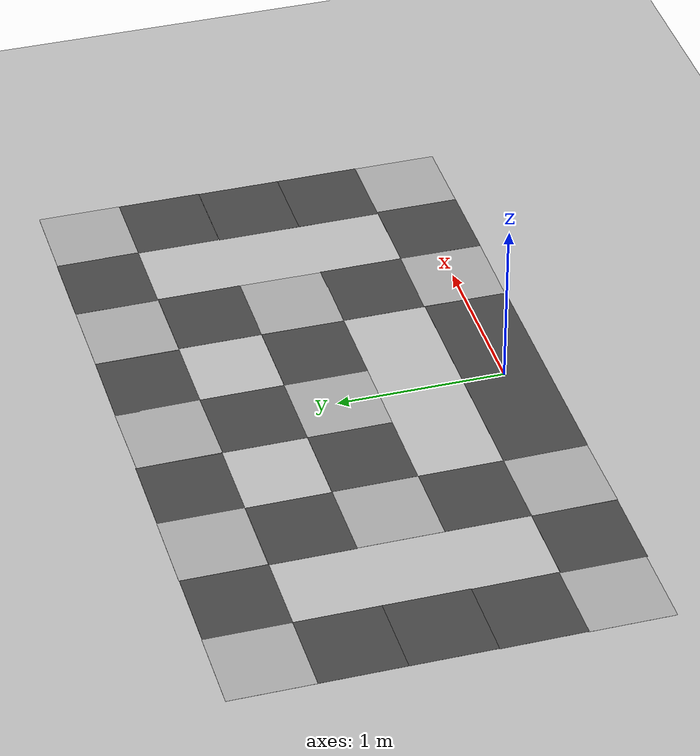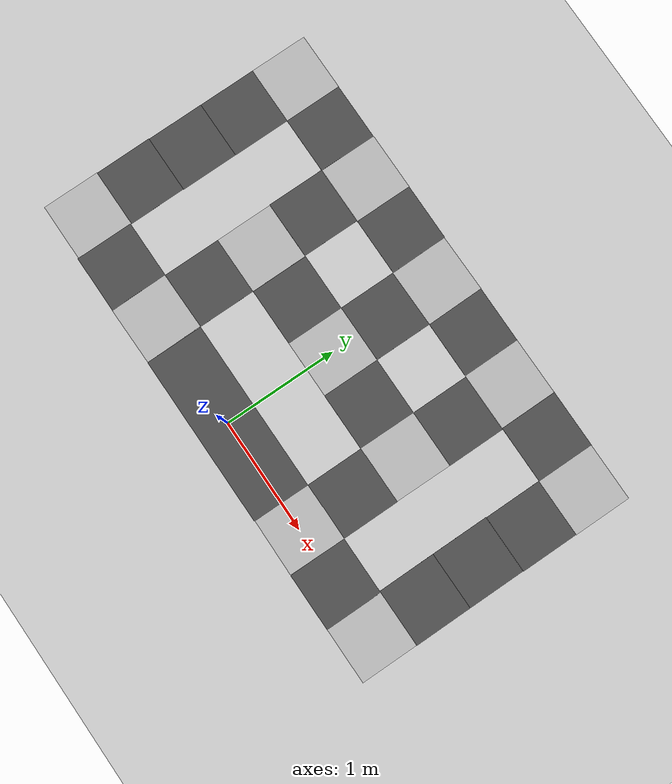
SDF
<sdf version="1.6">
 <world name="default">
  <light name="sun" type="directional">
   <pose>0 0 10 0 -0 0</pose>
   <diffuse>0.8 0.8 0.8 1</diffuse>
   <specular>0.2 0.2 0.2 1</specular>
   <attenuation>
    <range>1000</range>
    <constant>0.9</constant>
    <linear>0.01</linear>
    <quadratic>0.001</quadratic>
   </attenuation>
   <direction>-0.5 0.1 -0.9</direction>
  </light>
  <model name="ground_plane">
   <static>1</static>
   <link name="link">
    <collision name="collision">
     <geometry><plane><normal>0 0 1</normal><size>100 100</size></plane></geometry>
     <surface><friction><ode><mu>100</mu><mu2>50</mu2></ode></friction></surface>
    </collision>
    <visual name="visual">
     <cast_shadows>0</cast_shadows>
     <geometry><plane><normal>0 0 1</normal><size>100 100</size></plane></geometry>
     <material>
      <script><uri>file://media/materials/scripts/gazebo.material</uri><name>Gazebo/Grey</name></script>
     </material>
    </visual>
   </link>
  </model>
  <gravity>0 0 -9.8</gravity>
  <magnetic_field>6e-06 2.3e-05 -4.2e-05</magnetic_field>
  <atmosphere type="adiabatic"/>
  <physics name="default_physics" default="0" type="ode">
   <max_step_size>0.01</max_step_size>
   <real_time_factor>1</real_time_factor>
   <real_time_update_rate>0</real_time_update_rate>
  </physics>
  <scene><ambient>0.4 0.4 0.4 1</ambient><background>0.7 0.7 0.7 1</background><shadows>1</shadows></scene>
  <spherical_coordinates>
   <surface_model>EARTH_WGS84</surface_model>
   <latitude_deg>0</latitude_deg>
   <longitude_deg>0</longitude_deg>
   <elevation>0</elevation>
   <heading_deg>0</heading_deg>
  </spherical_coordinates>
  <model name="road_diag">
   <static>1</static>
   <link name="link">
    <collision name="collision"><geometry><box><size>0.5 0.5 0.001</size></box></geometry></collision>
    <visual name="visual">
     <cast_shadows>0</cast_shadows>
     <geometry><box><size>0.5 0.5 0.001</size></box></geometry>
     <material>
      <script>
       <uri>model://road_diag/materials/scripts</uri>
       <uri>model://road_diag/materials/textures</uri>
       <name>vrc/diag</name>
      </script>
     </material>
    </visual>
   </link>
   <pose>-2.00033 0.007533 0 0 0 -1.5708</pose>
  </model>
  <model name="road_inter">
   <static>1</static>
   <link name="link">
    <collision name="collision"><geometry><box><size>0.5 0.5 0.001</size></box></geometry></collision>
    <visual name="visual">
     <cast_shadows>0</cast_shadows>
     <geometry><box><size>0.5 0.5 0.001</size></box></geometry>
     <material>
      <script>
       <uri>model://road_inter/materials/scripts</uri>
       <uri>model://road_inter/materials/textures</uri>
       <name>vrc/inter</name>
      </script>
     </material>
    </visual>
   </link>
   <pose>0 1 0 0 -0 0</pose>
  </model>
  <model name="road_plane_3">
   <static>1</static>
   <link name="link">
    <collision name="collision"><geometry><box><size>1.5 0.5 0.001</size></box></geometry></collision>
    <visual name="visual">
     <cast_shadows>0</cast_shadows>
     <geometry><box><size>1.5 0.5 0.001</size></box></geometry>
     <material>
      <script>
       <uri>model://road_plane_3/materials/scripts</uri>
       <uri>model://road_plane_3/materials/textures</uri>
       <name>vrc/road3</name>
      </script>
     </material>
    </visual>
   </link>
  </model>
  <model name="road_plane">
   <static>1</static>
   <link name="link">
    <collision name="collision"><geometry><box><size>0.5 0.5 0.001</size></box></geometry></collision>
    <visual name="visual">
     <cast_shadows>0</cast_shadows>
     <geometry><box><size>0.5 0.5 0.001</size></box></geometry>
     <material>
      <script>
       <uri>model://road_plane/materials/scripts</uri>
       <uri>model://road_plane/materials/textures</uri>
       <name>vrc/road</name>
      </script>
     </material>
    </visual>
   </link>
   <pose>-0.503049 1.99851 0 0 0 -0.001222</pose>
  </model>
  <model name="road_plane_0">
   <static>1</static>
   <link name="link">
    <collision name="collision"><geometry><box><size>0.5 0.5 0.001</size></box></geometry></collision>
    <visual name="visual">
     <cast_shadows>0</cast_shadows>
     <geometry><box><size>0.5 0.5 0.001</size></box></geometry>
     <material>
      <script>
       <uri>model://road_plane/materials/scripts</uri>
       <uri>model://road_plane/materials/textures</uri>
       <name>vrc/road</name>
      </script>
     </material>
    </visual>
   </link>
   <pose>-0.5 1 0 0 -0 0</pose>
  </model>
  <model name="road_plane_1">
   <static>1</static>
   <link name="link">
    <collision name="collision"><geometry><box><size>0.5 0.5 0.001</size></box></geometry></collision>
    <visual name="visual">
     <cast_shadows>0</cast_shadows>
     <geometry><box><size>0.5 0.5 0.001</size></box></geometry>
     <material>
      <script>
       <uri>model://road_plane/materials/scripts</uri>
       <uri>model://road_plane/materials/textures</uri>
       <name>vrc/road</name>
      </script>
     </material>
    </visual>
   </link>
   <pose>0.499918 0.998873 0 0 -0 0</pose>
  </model>
  <model name="road_diag_0">
   <static>1</static>
   <link name="link">
    <collision name="collision"><geometry><box><size>0.5 0.5 0.001</size></box></geometry></collision>
    <visual name="visual">
     <cast_shadows>0</cast_shadows>
     <geometry><box><size>0.5 0.5 0.001</size></box></geometry>
     <material>
      <script>
       <uri>model://road_diag/materials/scripts</uri>
       <uri>model://road_diag/materials/textures</uri>
       <name>vrc/diag</name>
      </script>
     </material>
    </visual>
   </link>
   <pose>1.98422 -0.000421 0 0 -0 0</pose>
  </model>
  <model name="road_plane_2">
   <static>1</static>
   <link name="link">
    <collision name="collision"><geometry><box><size>0.5 0.5 0.001</size></box></geometry></collision>
    <visual name="visual">
     <cast_shadows>0</cast_shadows>
     <geometry><box><size>0.5 0.5 0.001</size></box></geometry>
     <material>
      <script>
       <uri>model://road_plane/materials/scripts</uri>
       <uri>model://road_plane/materials/textures</uri>
       <name>vrc/road</name>
      </script>
     </material>
    </visual>
   </link>
   <pose>0 1.5 0 0 -0 1.5708</pose>
  </model>
  <model name="road_diag_1">
   <static>1</static>
   <link name="link">
    <collision name="collision"><geometry><box><size>0.5 0.5 0.001</size></box></geometry></collision>
    <visual name="visual">
     <cast_shadows>0</cast_shadows>
     <geometry><box><size>0.5 0.5 0.001</size></box></geometry>
     <material>
      <script>
       <uri>model://road_diag/materials/scripts</uri>
       <uri>model://road_diag/materials/textures</uri>
       <name>vrc/diag</name>
      </script>
     </material>
    </visual>
   </link>
   <pose>1.99178 1.998 0 0 -0 1.5708</pose>
  </model>
  <model name="road_diag_2">
   <static>1</static>
   <link name="link">
    <collision name="collision"><geometry><box><size>0.5 0.5 0.001</size></box></geometry></collision>
    <visual name="visual">
     <cast_shadows>0</cast_shadows>
     <geometry><box><size>0.5 0.5 0.001</size></box></geometry>
     <material>
      <script>
       <uri>model://road_diag/materials/scripts</uri>
       <uri>model://road_diag/materials/textures</uri>
       <name>vrc/diag</name>
      </script>
     </material>
    </visual>
   </link>
   <pose>-1.99529 2 0 0 -0 3.14159</pose>
  </model>
  <light name="user_directional_light_0" type="directional">
   <pose>-0.125952 -0.010846 1 0 -0 0</pose>
   <diffuse>0.5 0.5 0.5 1</diffuse>
   <specular>0.1 0.1 0.1 1</specular>
   <direction>0.1 0.1 -0.9</direction>
   <attenuation>
    <range>20</range>
    <constant>0.5</constant>
    <linear>0.01</linear>
    <quadratic>0.001</quadratic>
   </attenuation>
  </light>
  <model name="road_inter_clone">
   <static>1</static>
   <link name="link">
    <collision name="collision"><geometry><box><size>0.5 0.5 0.001</size></box></geometry></collision>
    <visual name="visual">
     <cast_shadows>0</cast_shadows>
     <geometry><box><size>0.5 0.5 0.001</size></box></geometry>
     <material>
      <script>
       <uri>model://road_inter/materials/scripts</uri>
       <uri>model://road_inter/materials/textures</uri>
       <name>vrc/inter</name>
      </script>
     </material>
    </visual>
   </link>
   <pose>1.00005 0.002587 0 0 0 -0.010949</pose>
  </model>
  <model name="road_plane_1_clone">
   <static>1</static>
   <link name="link">
    <collision name="collision"><geometry><box><size>0.5 0.5 0.001</size></box></geometry></collision>
    <visual name="visual">
     <cast_shadows>0</cast_shadows>
     <geometry><box><size>0.5 0.5 0.001</size></box></geometry>
     <material>
      <script>
       <uri>model://road_plane/materials/scripts</uri>
       <uri>model://road_plane/materials/textures</uri>
       <name>vrc/road</name>
      </script>
     </material>
    </visual>
   </link>
   <pose>1.50049 -0.001271 0 0 -0 0</pose>
  </model>
  <model name="road_inter_clone_clone">
   <static>1</static>
   <link name="link">
    <collision name="collision"><geometry><box><size>0.5 0.5 0.001</size></box></geometry></collision>
    <visual name="visual">
     <cast_shadows>0</cast_shadows>
     <geometry><box><size>0.5 0.5 0.001</size></box></geometry>
     <material>
      <script>
       <uri>model://road_inter/materials/scripts</uri>
       <uri>model://road_inter/materials/textures</uri>
       <name>vrc/inter</name>
      </script>
     </material>
    </visual>
   </link>
   <pose>0.99958 0.997727 0 0 -0 1.56408</pose>
  </model>
  <model name="road_plane_2_clone">
   <static>1</static>
   <link name="link">
    <collision name="collision"><geometry><box><size>0.5 0.5 0.001</size></box></geometry></collision>
    <visual name="visual">
     <cast_shadows>0</cast_shadows>
     <geometry><box><size>0.5 0.5 0.001</size></box></geometry>
     <material>
      <script>
       <uri>model://road_plane/materials/scripts</uri>
       <uri>model://road_plane/materials/textures</uri>
       <name>vrc/road</name>
      </script>
     </material>
    </visual>
   </link>
   <pose>1.00239 1.49731 0 0 -0 1.5708</pose>
  </model>
  <model name="road_plane_2_clone_0">
   <static>1</static>
   <link name="link">
    <collision name="collision"><geometry><box><size>0.5 0.5 0.001</size></box></geometry></collision>
    <visual name="visual">
     <cast_shadows>0</cast_shadows>
     <geometry><box><size>0.5 0.5 0.001</size></box></geometry>
     <material>
      <script>
       <uri>model://road_plane/materials/scripts</uri>
       <uri>model://road_plane/materials/textures</uri>
       <name>vrc/road</name>
      </script>
     </material>
    </visual>
   </link>
   <pose>1.00165 0.500682 0 0 -0 1.5708</pose>
  </model>
  <model name="road_plane_1_clone_clone">
   <static>1</static>
   <link name="link">
    <collision name="collision"><geometry><box><size>0.5 0.5 0.001</size></box></geometry></collision>
    <visual name="visual">
     <cast_shadows>0</cast_shadows>
     <geometry><box><size>0.5 0.5 0.001</size></box></geometry>
     <material>
      <script>
       <uri>model://road_plane/materials/scripts</uri>
       <uri>model://road_plane/materials/textures</uri>
       <name>vrc/road</name>
      </script>
     </material>
    </visual>
   </link>
   <pose>1.4939 2.00004 0 0 -0 0</pose>
  </model>
  <model name="road_inter_clone_clone_0">
   <static>1</static>
   <link name="link">
    <collision name="collision"><geometry><box><size>0.5 0.5 0.001</size></box></geometry></collision>
    <visual name="visual">
     <cast_shadows>0</cast_shadows>
     <geometry><box><size>0.5 0.5 0.001</size></box></geometry>
     <material>
      <script>
       <uri>model://road_inter/materials/scripts</uri>
       <uri>model://road_inter/materials/textures</uri>
       <name>vrc/inter</name>
      </script>
     </material>
    </visual>
   </link>
   <pose>0.992568 1.99844 0 0 0 -3.13754</pose>
  </model>
  <model name="road_plane_0_clone">
   <static>1</static>
   <link name="link">
    <collision name="collision"><geometry><box><size>0.5 0.5 0.001</size></box></geometry></collision>
    <visual name="visual">
     <cast_shadows>0</cast_shadows>
     <geometry><box><size>0.5 0.5 0.001</size></box></geometry>
     <material>
      <script>
       <uri>model://road_plane/materials/scripts</uri>
       <uri>model://road_plane/materials/textures</uri>
       <name>vrc/road</name>
      </script>
     </material>
    </visual>
   </link>
   <pose>-1.50196 1.99788 0 0 -0 0</pose>
  </model>
  <model name="road_inter_clone_clone_1">
   <static>1</static>
   <link name="link">
    <collision name="collision"><geometry><box><size>0.5 0.5 0.001</size></box></geometry></collision>
    <visual name="visual">
     <cast_shadows>0</cast_shadows>
     <geometry><box><size>0.5 0.5 0.001</size></box></geometry>
     <material>
      <script>
       <uri>model://road_inter/materials/scripts</uri>
       <uri>model://road_inter/materials/textures</uri>
       <name>vrc/inter</name>
      </script>
     </material>
    </visual>
   </link>
   <pose>-1.00111 2.00031 0 0 0 -3.14155</pose>
  </model>
  <model name="road_inter_clone_clone_1_clone">
   <static>1</static>
   <link name="link">
    <collision name="collision"><geometry><box><size>0.5 0.5 0.001</size></box></geometry></collision>
    <visual name="visual">
     <cast_shadows>0</cast_shadows>
     <geometry><box><size>0.5 0.5 0.001</size></box></geometry>
     <material>
      <script>
       <uri>model://road_inter/materials/scripts</uri>
       <uri>model://road_inter/materials/textures</uri>
       <name>vrc/inter</name>
      </script>
     </material>
    </visual>
   </link>
   <pose>-1.00268 5e-05 0 0 -0 0.010634</pose>
  </model>
  <model name="road_plane_0_clone_clone">
   <static>1</static>
   <link name="link">
    <collision name="collision"><geometry><box><size>0.5 0.5 0.001</size></box></geometry></collision>
    <visual name="visual">
     <cast_shadows>0</cast_shadows>
     <geometry><box><size>0.5 0.5 0.001</size></box></geometry>
     <material>
      <script>
       <uri>model://road_plane/materials/scripts</uri>
       <uri>model://road_plane/materials/textures</uri>
       <name>vrc/road</name>
      </script>
     </material>
    </visual>
   </link>
   <pose>-1.50319 1.9e-05 0 0 -0 0</pose>
  </model>
  <model name="road_inter_clone_0">
   <static>1</static>
   <link name="link">
    <collision name="collision"><geometry><box><size>0.5 0.5 0.001</size></box></geometry></collision>
    <visual name="visual">
     <cast_shadows>0</cast_shadows>
     <geometry><box><size>0.5 0.5 0.001</size></box></geometry>
     <material>
      <script>
       <uri>model://road_inter/materials/scripts</uri>
       <uri>model://road_inter/materials/textures</uri>
       <name>vrc/inter</name>
      </script>
     </material>
    </visual>
   </link>
   <pose>-1.00191 0.998326 0 0 0 -1.5697</pose>
  </model>
  <model name="road_plane_2_clone_0_clone">
   <static>1</static>
   <link name="link">
    <collision name="collision"><geometry><box><size>0.5 0.5 0.001</size></box></geometry></collision>
    <visual name="visual">
     <cast_shadows>0</cast_shadows>
     <geometry><box><size>0.5 0.5 0.001</size></box></geometry>
     <material>
      <script>
       <uri>model://road_plane/materials/scripts</uri>
       <uri>model://road_plane/materials/textures</uri>
       <name>vrc/road</name>
      </script>
     </material>
    </visual>
   </link>
   <pose>-1.00151 0.499337 0 0 -0 1.5708</pose>
  </model>
  <model name="road_plane_2_clone_0_clone_0">
   <static>1</static>
   <link name="link">
    <collision name="collision"><geometry><box><size>0.5 0.5 0.001</size></box></geometry></collision>
    <visual name="visual">
     <cast_shadows>0</cast_shadows>
     <geometry><box><size>0.5 0.5 0.001</size></box></geometry>
     <material>
      <script>
       <uri>model://road_plane/materials/scripts</uri>
       <uri>model://road_plane/materials/textures</uri>
       <name>vrc/road</name>
      </script>
     </material>
    </visual>
   </link>
   <pose>-1.00615 1.49864 0 0 -0 1.5708</pose>
  </model>
  <model name="road_inter_clone_1">
   <static>1</static>
   <link name="link">
    <collision name="collision"><geometry><box><size>0.5 0.5 0.001</size></box></geometry></collision>
    <visual name="visual">
     <cast_shadows>0</cast_shadows>
     <geometry><box><size>0.5 0.5 0.001</size></box></geometry>
     <material>
      <script>
       <uri>model://road_inter/materials/scripts</uri>
       <uri>model://road_inter/materials/textures</uri>
       <name>vrc/inter</name>
      </script>
     </material>
    </visual>
   </link>
   <pose>-0.001143 1.99699 0 0 0 -3.13033</pose>
  </model>
  <model name="road_plane_clone">
   <static>1</static>
   <link name="link">
    <collision name="collision"><geometry><box><size>0.5 0.5 0.001</size></box></geometry></collision>
    <visual name="visual">
     <cast_shadows>0</cast_shadows>
     <geometry><box><size>0.5 0.5 0.001</size></box></geometry>
     <material>
      <script>
       <uri>model://road_plane/materials/scripts</uri>
       <uri>model://road_plane/materials/textures</uri>
       <name>vrc/road</name>
      </script>
     </material>
    </visual>
   </link>
   <pose>0.490555 1.99783 0 0 0 -0.001222</pose>
  </model>
  <model name="road_plane_2_clone_0_clone_clone">
   <static>1</static>
   <link name="link">
    <collision name="collision"><geometry><box><size>0.5 0.5 0.001</size></box></geometry></collision>
    <visual name="visual">
     <cast_shadows>0</cast_shadows>
     <geometry><box><size>0.5 0.5 0.001</size></box></geometry>
     <material>
      <script>
       <uri>model://road_plane/materials/scripts</uri>
       <uri>model://road_plane/materials/textures</uri>
       <name>vrc/road</name>
      </script>
     </material>
    </visual>
   </link>
   <pose>-1.99475 1.50101 0 0 0 -1.57015</pose>
  </model>
  <model name="road_plane_2_clone_0_clone_clone_0">
   <static>1</static>
   <link name="link">
    <collision name="collision"><geometry><box><size>0.5 0.5 0.001</size></box></geometry></collision>
    <visual name="visual">
     <cast_shadows>0</cast_shadows>
     <geometry><box><size>0.5 0.5 0.001</size></box></geometry>
     <material>
      <script>
       <uri>model://road_plane/materials/scripts</uri>
       <uri>model://road_plane/materials/textures</uri>
       <name>vrc/road</name>
      </script>
     </material>
    </visual>
   </link>
   <pose>-1.99521 1.00309 0 0 -0 1.5708</pose>
  </model>
  <model name="road_plane_2_clone_0_clone_clone_1">
   <static>1</static>
   <link name="link">
    <collision name="collision"><geometry><box><size>0.5 0.5 0.001</size></box></geometry></collision>
    <visual name="visual">
     <cast_shadows>0</cast_shadows>
     <geometry><box><size>0.5 0.5 0.001</size></box></geometry>
     <material>
      <script>
       <uri>model://road_plane/materials/scripts</uri>
       <uri>model://road_plane/materials/textures</uri>
       <name>vrc/road</name>
      </script>
     </material>
    </visual>
   </link>
   <pose>-1.99773 0.505306 0 0 -0 1.57576</pose>
  </model>
  <model name="road_plane_2_clone_0_clone_1">
   <static>1</static>
   <link name="link">
    <collision name="collision"><geometry><box><size>0.5 0.5 0.001</size></box></geometry></collision>
    <visual name="visual">
     <cast_shadows>0</cast_shadows>
     <geometry><box><size>0.5 0.5 0.001</size></box></geometry>
     <material>
      <script>
       <uri>model://road_plane/materials/scripts</uri>
       <uri>model://road_plane/materials/textures</uri>
       <name>vrc/road</name>
      </script>
     </material>
    </visual>
   </link>
   <pose>1.98955 1.49946 0 0 -0 1.5708</pose>
  </model>
  <model name="road_plane_2_clone_0_clone_2">
   <static>1</static>
   <link name="link">
    <collision name="collision"><geometry><box><size>0.5 0.5 0.001</size></box></geometry></collision>
    <visual name="visual">
     <cast_shadows>0</cast_shadows>
     <geometry><box><size>0.5 0.5 0.001</size></box></geometry>
     <material>
      <script>
       <uri>model://road_plane/materials/scripts</uri>
       <uri>model://road_plane/materials/textures</uri>
       <name>vrc/road</name>
      </script>
     </material>
    </visual>
   </link>
   <pose>1.98632 0.4998 0 0 -0 1.57344</pose>
  </model>
  <model name="road_plane_2_clone_0_clone_3">
   <static>1</static>
   <link name="link">
    <collision name="collision"><geometry><box><size>0.5 0.5 0.001</size></box></geometry></collision>
    <visual name="visual">
     <cast_shadows>0</cast_shadows>
     <geometry><box><size>0.5 0.5 0.001</size></box></geometry>
     <material>
      <script>
       <uri>model://road_plane/materials/scripts</uri>
       <uri>model://road_plane/materials/textures</uri>
       <name>vrc/road</name>
      </script>
     </material>
    </visual>
   </link>
   <pose>1.98576 0.998169 0 0 -0 1.5708</pose>
  </model>
 </world>
</sdf>
